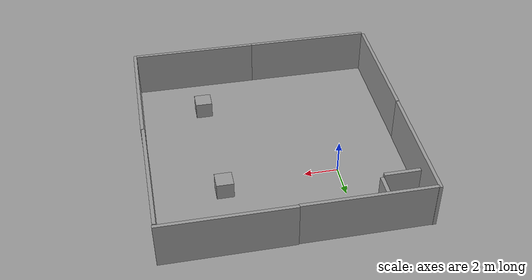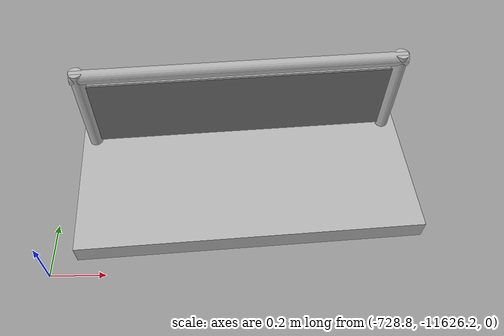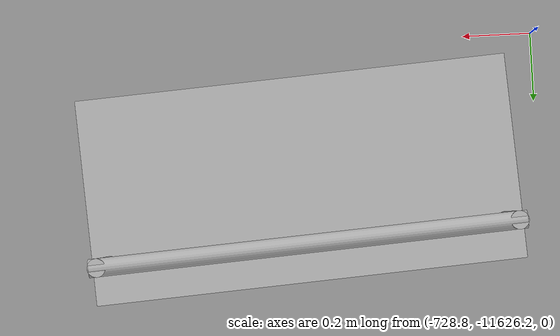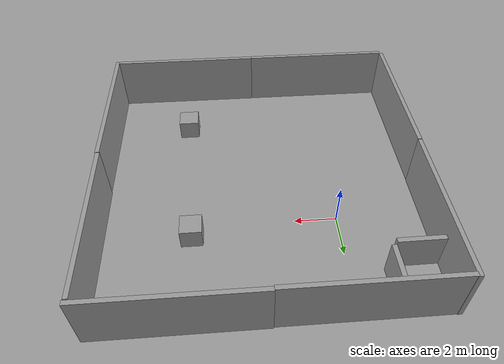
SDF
<sdf version="1.6">
 <world name="default">
  <light name="sun" type="directional">
   <pose>0 0 10 0 -0 0</pose>
   <diffuse>0.8 0.8 0.8 1</diffuse>
   <specular>0.1 0.1 0.1 1</specular>
   <attenuation>
    <range>1000</range>
    <constant>0.9</constant>
    <linear>0.01</linear>
    <quadratic>0.001</quadratic>
   </attenuation>
   <direction>-0.5 0.5 -1</direction>
  </light>
  <gravity>0 0 -9.8</gravity>
  <magnetic_field>6e-06 2.3e-05 -4.2e-05</magnetic_field>
  <atmosphere type="adiabatic"/>
  <physics name="default_physics" default="0" type="ode">
   <max_step_size>0.001</max_step_size>
   <real_time_factor>1</real_time_factor>
   <real_time_update_rate>1000</real_time_update_rate>
  </physics>
  <scene><ambient>0.4 0.4 0.4 1</ambient><background>0.7 0.7 0.7 1</background><shadows>1</shadows></scene>
  <spherical_coordinates>
   <surface_model>EARTH_WGS84</surface_model>
   <latitude_deg>0</latitude_deg>
   <longitude_deg>0</longitude_deg>
   <elevation>0</elevation>
   <heading_deg>0</heading_deg>
  </spherical_coordinates>
  <model name="frc2016_lowbar">
   <link name="base">
    <inertial>
     <mass>50</mass>
     <inertia>
      <ixx>0.035543</ixx>
      <ixy>0</ixy>
      <ixz>0</ixz>
      <iyy>0.134412</iyy>
      <iyz>0</iyz>
      <izz>0.165376</izz>
     </inertia>
    </inertial>
    <visual name="platform">
     <pose>0 0 0.039065 0 -0 0</pose>
     <geometry><box><size>1.26 0.5996 0.07813</size></box></geometry>
    </visual>
    <collision name="platform">
     <pose>0 0 0.039065 0 -0 0</pose>
     <geometry><box><size>1.27 0.6096 0.07813</size></box></geometry>
    </collision>
    <visual name="right_column">
     <pose>-0.57845 -0.18464 0.26863 0 -0 0</pose>
     <geometry><cylinder><radius>0.0254</radius><length>0.381</length></cylinder></geometry>
    </visual>
    <collision name="right_column">
     <pose>-0.57845 -0.18464 0.26863 0 -0 0</pose>
     <geometry><cylinder><radius>0.0254</radius><length>0.381</length></cylinder></geometry>
    </collision>
    <visual name="left_column">
     <pose>0.57845 -0.18464 0.26863 0 -0 0</pose>
     <geometry><cylinder><radius>0.0254</radius><length>0.381</length></cylinder></geometry>
    </visual>
    <collision name="left_column">
     <pose>0.57845 -0.18464 0.26863 0 -0 0</pose>
     <geometry><cylinder><radius>0.0254</radius><length>0.381</length></cylinder></geometry>
    </collision>
    <visual name="horizontal">
     <pose>0 -0.18464 0.43556 0 1.5707 0</pose>
     <geometry><cylinder><radius>0.0254</radius><length>1.2018</length></cylinder></geometry>
    </visual>
    <collision name="horizontal">
     <pose>0 -0.18464 0.43556 0 1.5707 0</pose>
     <geometry><cylinder><radius>0.0254</radius><length>1.2018</length></cylinder></geometry>
    </collision>
   </link>
   <link name="wall">
    <pose>0 -0.1778 0.24323 0 -0 0</pose>
    <inertial>
     <mass>1</mass>
     <inertia>
      <ixx>0.00774528</ixx>
      <ixy>0</ixy>
      <ixz>0</ixz>
      <iyy>0.116613</iyy>
      <iyz>0</iyz>
      <izz>0.108874</izz>
     </inertia>
    </inertial>
    <visual name="visual">
     <geometry><box><size>1.1176 0.00635 0.3</size></box></geometry>
     <material><ambient>0.46 0.46 0.46 1</ambient><diffuse>0.46 0.46 0.46 1</diffuse></material>
    </visual>
    <collision name="collision"><geometry><box><size>1.143 0.00635 0.3</size></box></geometry></collision>
   </link>
   <joint name="bar_joint" type="revolute">
    <pose>0 0 0.36378 0 -0 0</pose>
    <parent>base</parent>
    <child>wall</child>
    <axis>
     <xyz>1 0 0</xyz>
     <limit><lower>-1.5707</lower><upper>1.5707</upper></limit>
     <use_parent_model_frame>0</use_parent_model_frame>
     <dynamics><spring_reference>0</spring_reference><spring_stiffness>0</spring_stiffness></dynamics>
    </axis>
   </joint>
   <pose>-728.102 -11625.8 -1.4e-05 -4.8e-05 0 -3.07664</pose>
  </model>
  <model name="grey_wall">
   <static>1</static>
   <link name="link">
    <pose>0 0 1.4 0 -0 0</pose>
    <collision name="collision"><geometry><box><size>7.5 0.2 2.8</size></box></geometry></collision>
    <visual name="visual">
     <cast_shadows>0</cast_shadows>
     <geometry><box><size>7.5 0.2 2.8</size></box></geometry>
     <material>
      <script>
       <uri>model://grey_wall/materials/scripts</uri>
       <uri>model://grey_wall/materials/textures</uri>
       <name>vrc/grey_wall</name>
      </script>
     </material>
    </visual>
   </link>
   <pose>-0.25507 5.13302 0 0 -0 0</pose>
  </model>
  <model name="ground_plane_0">
   <static>1</static>
   <link name="link">
    <collision name="collision">
     <geometry><plane><normal>0 0 1</normal><size>100 100</size></plane></geometry>
     <surface><friction><ode><mu>100</mu><mu2>50</mu2></ode></friction></surface>
    </collision>
    <visual name="visual">
     <cast_shadows>0</cast_shadows>
     <geometry><plane><normal>0 0 1</normal><size>100 100</size></plane></geometry>
     <material>
      <script><uri>file://media/materials/scripts/gazebo.material</uri><name>Gazebo/Grey</name></script>
     </material>
    </visual>
   </link>
   <pose>-1.03161 0.593285 0 0 -0 0</pose>
  </model>
  <model name="grey_wall_0">
   <static>1</static>
   <link name="link">
    <pose>0 0 1.4 0 -0 0</pose>
    <collision name="collision"><geometry><box><size>7.5 0.2 2.8</size></box></geometry></collision>
    <visual name="visual">
     <cast_shadows>0</cast_shadows>
     <geometry><box><size>7.5 0.2 2.8</size></box></geometry>
     <material>
      <script>
       <uri>model://grey_wall/materials/scripts</uri>
       <uri>model://grey_wall/materials/textures</uri>
       <name>vrc/grey_wall</name>
      </script>
     </material>
    </visual>
   </link>
   <pose>7.22297 5.175 0 0 -0 0</pose>
  </model>
  <model name="grey_wall_1">
   <static>1</static>
   <link name="link">
    <pose>0 0 1.4 0 -0 0</pose>
    <collision name="collision"><geometry><box><size>7.5 0.2 2.8</size></box></geometry></collision>
    <visual name="visual">
     <cast_shadows>0</cast_shadows>
     <geometry><box><size>7.5 0.2 2.8</size></box></geometry>
     <material>
      <script>
       <uri>model://grey_wall/materials/scripts</uri>
       <uri>model://grey_wall/materials/textures</uri>
       <name>vrc/grey_wall</name>
      </script>
     </material>
    </visual>
   </link>
   <pose>-0.340093 -9.918 0 0 -0 0</pose>
  </model>
  <model name="grey_wall_2">
   <static>1</static>
   <link name="link">
    <pose>0 0 1.4 0 -0 0</pose>
    <collision name="collision"><geometry><box><size>7.5 0.2 2.8</size></box></geometry></collision>
    <visual name="visual">
     <cast_shadows>0</cast_shadows>
     <geometry><box><size>7.5 0.2 2.8</size></box></geometry>
     <material>
      <script>
       <uri>model://grey_wall/materials/scripts</uri>
       <uri>model://grey_wall/materials/textures</uri>
       <name>vrc/grey_wall</name>
      </script>
     </material>
    </visual>
   </link>
   <pose>7.14224 -9.91122 0 0 -0 0</pose>
  </model>
  <model name="grey_wall_3">
   <static>1</static>
   <link name="link">
    <pose>0 0 1.4 0 -0 0</pose>
    <collision name="collision"><geometry><box><size>7.5 0.2 2.8</size></box></geometry></collision>
    <visual name="visual">
     <cast_shadows>0</cast_shadows>
     <geometry><box><size>7.5 0.2 2.8</size></box></geometry>
     <material>
      <script>
       <uri>model://grey_wall/materials/scripts</uri>
       <uri>model://grey_wall/materials/textures</uri>
       <name>vrc/grey_wall</name>
      </script>
     </material>
    </visual>
   </link>
   <pose>-4.14565 -6.01929 0 0 -0 1.56819</pose>
  </model>
  <model name="grey_wall_4">
   <static>1</static>
   <link name="link">
    <pose>0 0 1.4 0 -0 0</pose>
    <collision name="collision"><geometry><box><size>7.5 0.2 2.8</size></box></geometry></collision>
    <visual name="visual">
     <cast_shadows>0</cast_shadows>
     <geometry><box><size>7.5 0.2 2.8</size></box></geometry>
     <material>
      <script>
       <uri>model://grey_wall/materials/scripts</uri>
       <uri>model://grey_wall/materials/textures</uri>
       <name>vrc/grey_wall</name>
      </script>
     </material>
    </visual>
   </link>
   <pose>-4.09278 1.50272 0 0 0 -1.57865</pose>
  </model>
  <model name="grey_wall_5">
   <static>1</static>
   <link name="link">
    <pose>0 0 1.4 0 -0 0</pose>
    <collision name="collision"><geometry><box><size>7.5 0.2 2.8</size></box></geometry></collision>
    <visual name="visual">
     <cast_shadows>0</cast_shadows>
     <geometry><box><size>7.5 0.2 2.8</size></box></geometry>
     <material>
      <script>
       <uri>model://grey_wall/materials/scripts</uri>
       <uri>model://grey_wall/materials/textures</uri>
       <name>vrc/grey_wall</name>
      </script>
     </material>
    </visual>
   </link>
   <pose>10.956 -6.23465 0 0 0 -1.57076</pose>
  </model>
  <model name="grey_wall_6">
   <static>1</static>
   <link name="link">
    <pose>0 0 1.4 0 -0 0</pose>
    <collision name="collision"><geometry><box><size>7.5 0.2 2.8</size></box></geometry></collision>
    <visual name="visual">
     <cast_shadows>0</cast_shadows>
     <geometry><box><size>7.5 0.2 2.8</size></box></geometry>
     <material>
      <script>
       <uri>model://grey_wall/materials/scripts</uri>
       <uri>model://grey_wall/materials/textures</uri>
       <name>vrc/grey_wall</name>
      </script>
     </material>
    </visual>
   </link>
   <pose>10.885 1.28684 0.00758 0 0 -1.56092</pose>
  </model>
  <model name="unit_box_3">
   <pose>7.04113 -6.9223 0.499995 1e-05 -0 0</pose>
   <link name="link">
    <inertial>
     <mass>1</mass>
     <inertia>
      <ixx>0.166667</ixx>
      <ixy>0</ixy>
      <ixz>0</ixz>
      <iyy>0.166667</iyy>
      <iyz>0</iyz>
      <izz>0.166667</izz>
     </inertia>
    </inertial>
    <collision name="collision"><geometry><box><size>1 1 1</size></box></geometry></collision>
    <visual name="visual">
     <geometry><box><size>1 1 1</size></box></geometry>
     <material>
      <script><name>Gazebo/Grey</name><uri>file://media/materials/scripts/gazebo.material</uri></script>
     </material>
    </visual>
   </link>
  </model>
  <model name="unit_box_5">
   <pose>6.77977 0.572729 0.499995 1e-05 -0 0</pose>
   <link name="link">
    <inertial>
     <mass>1</mass>
     <inertia>
      <ixx>0.166667</ixx>
      <ixy>0</ixy>
      <ixz>0</ixz>
      <iyy>0.166667</iyy>
      <iyz>0</iyz>
      <izz>0.166667</izz>
     </inertia>
    </inertial>
    <collision name="collision"><geometry><box><size>1 1 1</size></box></geometry></collision>
    <visual name="visual">
     <geometry><box><size>1 1 1</size></box></geometry>
     <material>
      <script><name>Gazebo/Grey</name><uri>file://media/materials/scripts/gazebo.material</uri></script>
     </material>
    </visual>
   </link>
  </model>
  <model name="unit_box_0_0">
   <pose>-1.6822 3.97046 0.887285 5e-06 -1e-06 0.00495</pose>
   <link name="link">
    <inertial>
     <mass>1</mass>
     <inertia>
      <ixx>0.166667</ixx>
      <ixy>0</ixy>
      <ixz>0</ixz>
      <iyy>0.166667</iyy>
      <iyz>0</iyz>
      <izz>0.166667</izz>
     </inertia>
    </inertial>
    <collision name="collision"><geometry><box><size>0.223422 2.12401 1.77458</size></box></geometry></collision>
    <visual name="visual">
     <geometry><box><size>0.223422 2.12401 1.77458</size></box></geometry>
     <material>
      <script><name>Gazebo/Grey</name><uri>file://media/materials/scripts/gazebo.material</uri></script>
     </material>
    </visual>
   </link>
  </model>
  <model name="unit_box_0_0_clone">
   <pose>-2.91786 2.69099 0.88729 0 1e-06 -1.56587</pose>
   <link name="link">
    <inertial>
     <mass>1</mass>
     <inertia>
      <ixx>0.166667</ixx>
      <ixy>0</ixy>
      <ixz>0</ixz>
      <iyy>0.166667</iyy>
      <iyz>0</iyz>
      <izz>0.166667</izz>
     </inertia>
    </inertial>
    <collision name="collision"><geometry><box><size>0.223422 2.12401 1.77458</size></box></geometry></collision>
    <visual name="visual">
     <geometry><box><size>0.223422 2.12401 1.77458</size></box></geometry>
     <material>
      <script><name>Gazebo/Grey</name><uri>file://media/materials/scripts/gazebo.material</uri></script>
     </material>
    </visual>
   </link>
  </model>
 </world>
</sdf>
